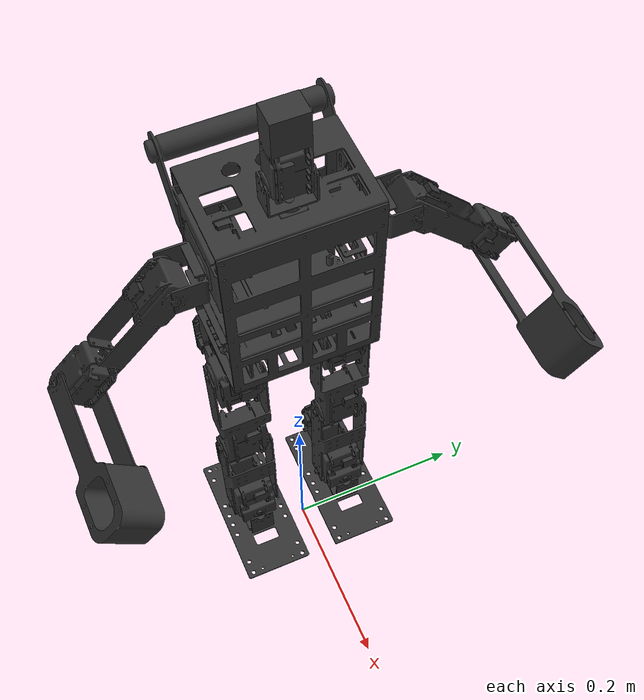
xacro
<?xml version="1.0" ?>
<robot name="Minibot" xmlns:xacro="http://www.ros.org/wiki/xacro">

<xacro:property name="tofa" value="1" /> <!--Torque factor-->
<xacro:property name="infa" value="1" /> <!--inertia factor-->
<xacro:property name="insu" value="0" /> <!--inertia summand-->
<xacro:property name="d" value="0" /> <!-- damping -->
<xacro:property name="f" value="0" /> <!-- friction -->
<xacro:property name="pos_or_eff" value="1" /> <!-- position (0) or effort(1) joint interfaces -->

<link name="base_link"/>

  <joint name="base_link_to_body" type="fixed">
    <parent link="base_link"/>
    <child link="trunk_link"/>
    <origin xyz="0 0 0.545" rpy="0 0 0" />
  </joint>

  <link name="trunk_link">
    <inertial>
      <origin xyz="-0.025019 0.000832 -0.054364" rpy=" 1.5707963268 0 1.5707963268"/>
      <mass value="1.423"/>
      <inertia ixx="${insu*10+infa* 0.009125471}"  ixy="0.0"  ixz="0" iyy="${insu*10+infa*0.005276569}" iyz="0.0" izz="${insu*10+infa*0.010426914}" />
    </inertial>
    <visual>
      <origin xyz="0 0 0" rpy="1.5707963268 0 1.5707963268"/>
      <geometry>
        <mesh filename="package://minibot_description/meshes/torso_low.dae"  scale="1 1 1"/>
      </geometry>
      <material name="Grey">
        <color rgba="0.20 0.20 0.20 1.0"/>
      </material>
    </visual>
    <collision>
      <origin xyz="0 0 0" rpy="1.5707963268 0 1.5707963268"/>
      <geometry>
        <mesh filename="package://minibot_description/meshes/torso_coll.dae"  scale="1 1 1"/>
      </geometry>
    </collision> -->
  </link>

  <link name="L_HEAD_PAN">
    <inertial>
      <origin xyz="0.000002 -0.001022 0.008994"/>
            <mass value="0.001"/>
      <inertia ixx="0"  ixy="0"  ixz="0" iyy="0" iyz="0" izz="0" />
    </inertial>
    <visual>
      <origin xyz="0 0 0" rpy="1.5707963268 0 0" />
      <geometry>
        <mesh filename="package://minibot_description/meshes/head_lower_high.stl"  scale="1 1 1"/>
      </geometry>
      <material name="Grey">
        <color rgba="0.20 0.20 0.20 1.0"/>
      </material>
    </visual>
    <collision>
      <origin xyz="0 0 0" rpy="1.5707963268 0 0" />
      <geometry>
        <mesh filename="package://minibot_description/meshes/head_lower_coll.dae"  scale="1 1 1"/>
      </geometry>
    </collision>
  </link>

  <link name="L_HEAD_TILT">
    <inertial>
      <origin xyz="-0.000223 -0.028433 0.0" rpy="0 1.5707963268 0"/>
      <mass value="0.001"/>
      <inertia ixx="0"  ixy="0"  ixz="0" iyy="0" iyz="0" izz="0" />
    </inertial>
    <visual>
      <origin xyz="0 0 0" rpy="3.14 1.5707963268 0" />
      <geometry>
        <mesh filename="package://minibot_description/meshes/head_upper_high.stl"  scale="1 1 1"/>
      </geometry>
      <material name="Grey">
        <color rgba="0.20 0.20 0.20 1.0"/>
      </material>
    </visual>
    <collision>
      <origin xyz="0 0 0" rpy="3.14 1.5707963268 0" />
      <geometry>
        <mesh filename="package://minibot_description/meshes/head_upper_coll.dae"  scale="1 1 1"/>
      </geometry>
    </collision>
  </link>

  <link name="L_SHOULDER_PITCH_L">
    <inertial>
      <origin xyz="0.0 0.0 0.0087"/>
      <mass value="0.018"/>
      <inertia ixx="${insu*0.1+infa*0.000006948}"  ixy="0"  ixz="0" iyy="${insu*0.1+infa*0.000007574}" iyz="0" izz="${insu*0.1+infa*0.000003585}" />
    </inertial>
    <visual>
      <origin xyz="0 0 0" rpy="0 1.5707963268 1.5707963268"/>
      <geometry>
        <!--box size="0.016 0.033 0.02165" /-->
        <mesh filename="package://minibot_description/meshes/shoulder_con_high.stl"  scale="1 1 1"/>
      </geometry>
      <material name="Grey">
        <color rgba="0.20 0.20 0.20 1.0"/>
      </material>
    </visual>
    <collision>
      <origin xyz="0 0 0" rpy="0 1.5707963268 1.5707963268"/>
      <geometry>
        <mesh filename="package://minibot_description/meshes/shoulder_con_coll.dae"  scale="1 1 1"/>
      </geometry>
    </collision>
  </link>

  <link name="L_SHOULDER_ROLL_L" >
    <inertial>
      <origin xyz="-0.071053 0.000432 0.000046"/>
      <mass value="0.190"/>
      <inertia ixx="${insu+infa*0.0000409}"  ixy="0"  ixz="0" iyy="${insu+infa*0.000667366}" iyz="0" izz="${insu+infa*0.000664711}" />
    </inertial>
    <visual>
      <origin xyz="0 0 0" rpy="0 0 -1.5707963268" />
      <geometry>
        <mesh filename="package://minibot_description/meshes/upper_arm_high.dae"  scale="1 1 1"/>
      </geometry>
      <material name="Grey">
        <color rgba="0.20 0.20 0.20 1.0"/>
      </material>
    </visual>
   <collision>
      <origin xyz="0 0 0" rpy="0 0 -1.5707963268" />
      <geometry>
        <mesh filename="package://minibot_description/meshes/upper_arm_coll.dae"  scale="1 1 1"/>
      </geometry>
    </collision>
  </link>

  <link name="L_ELBOW_L" >
    <inertial>
      <origin xyz="-0.108 0.0 0.0" rpy="0 0 -3.141"/>
      <mass value="0.097"/>
      <inertia ixx="${insu*0.1+infa*0.00004315}"  ixy="0"  ixz="0" iyy="${insu*0.1+infa*0.000170889}" iyz="0" izz="${insu*0.1+infa*0.000179088}" />
    </inertial>

    <visual>
      <origin xyz="0 0 0" rpy="0 1.5707963268 -1.5707963268" />
      <geometry>
        <mesh filename="package://minibot_description/meshes/lower_arm_high.stl"  scale="1 1 1"/>
      </geometry>
      <material name="Grey">
        <color rgba="0.20 0.20 0.20 1.0"/>
      </material>
    </visual>
    <collision>
      <origin xyz="0 0 0" rpy="0 1.5707963268 -1.5707963268" />
      <geometry>
        <mesh filename="package://minibot_description/meshes/lower_arm_coll.dae"  scale="1 1 1"/>
      </geometry>
    </collision>
  </link>

  <link name="L_SHOULDER_PITCH_R" >
    <inertial>
      <origin xyz="0.0 0.0 0.0087"/>
      <mass value="0.018"/>
      <inertia ixx="${insu*0.1+infa*0.000006948}"  ixy="0"  ixz="0" iyy="${insu*0.1+infa*0.000007574}" iyz="0" izz="${insu*0.1+infa*0.000003585}" />
    </inertial>
    <visual>
      <origin xyz="0 0 0" rpy="0 1.5707963268 1.5707963268"/>
      <geometry>
        <!--box size="0.016 0.033 0.02165" /-->
        <mesh filename="package://minibot_description/meshes/shoulder_con_high.stl"  scale="1 1 1"/>
      </geometry>
      <material name="Grey">
        <color rgba="0.20 0.20 0.20 1.0"/>
      </material>
    </visual>
    <collision>
      <origin xyz="0 0 0" rpy="0 1.5707963268 1.5707963268"/>
      <geometry>
        <mesh filename="package://minibot_description/meshes/shoulder_con_coll.dae"  scale="1 1 1"/>
      </geometry>
    </collision>
  </link>

  <link name="L_SHOULDER_ROLL_R" >
    <inertial>
      <origin xyz="-0.071053 0.000432 0.000046"/>
      <mass value="0.190"/>
      <inertia ixx="${insu*0.1+infa*0.0000409}"  ixy="0"  ixz="0" iyy="${insu*0.1+infa*0.000667366}" iyz="0" izz="${insu*0.1+infa*0.000664711}" />
    </inertial>
    <visual>
      <origin xyz="0 0 0" rpy="0 0 -1.5707963268" />
      <geometry>
        <!--box size="0.06 0.032 0.035"/-->
        <mesh filename="package://minibot_description/meshes/upper_arm_high.dae"  scale="1 1 1"/>
      </geometry>
      <material name="Grey">
        <color rgba="0.20 0.20 0.20 1.0"/>
      </material>
    </visual>
    <collision>
      <origin xyz="0 0 0" rpy="0 0 -1.5707963268" />
      <geometry>
        <mesh filename="package://minibot_description/meshes/upper_arm_coll.dae"  scale="1 1 1"/>
      </geometry>
    </collision>
  </link>

  <link name="L_ELBOW_R" >
    <inertial>
      <origin xyz="0.108 0.0 0.0"/>
      <mass value="0.097"/>
      <inertia ixx="${insu*0.1+infa*0.00004315}"  ixy="0"  ixz="0" iyy="${insu*0.1+infa*0.000170889}" iyz="0" izz="${insu*0.1+infa*0.000179088}" />
    </inertial>

    <visual>
      <origin xyz="0 0 0" rpy="0 1.5707963268 1.5707963268" />
      <geometry>
        <mesh filename="package://minibot_description/meshes/lower_arm_high.stl"  scale="1 1 1"/>
      </geometry>
      <material name="Grey">
        <color rgba="0.20 0.20 0.20 1.0"/>
      </material>
    </visual>
    <collision>
      <origin xyz="0 0 0" rpy="0 1.5707963268 1.5707963268" />
      <geometry>
        <mesh filename="package://minibot_description/meshes/lower_arm_coll.dae"  scale="1 1 1"/>
      </geometry>
    </collision>
  </link>

  <link name="L_HIP_YAW_L" >
    <inertial>
      <origin xyz="0.0 0.0 0.011" rpy="1.5707963268 0 1.5707963268"/>
      <mass value="0.022"/>
      <inertia ixx="${insu*0.1+infa*0.000014143}"  ixy="0"  ixz="0" iyy="${insu*0.1+infa*0.000013017}" iyz="0" izz="${insu*0.1+infa*0.0000052}" />
    </inertial>
    <visual>
      <origin xyz="0 0 0" rpy="1.5707963268 0 0" />
      <geometry>
        <!--box size="0.045 0.08175 0.028652" /-->
        <mesh filename="package://minibot_description/meshes/yaw_con_high.stl"  scale="1 1 1"/>
      </geometry>
      <material name="Grey">
        <color rgba="0.20 0.20 0.20 1.0"/>
      </material>
    </visual>
    <collision>
      <origin xyz="0 0 0" rpy="1.5707963268 0 0" />
      <geometry>
        <mesh filename="package://minibot_description/meshes/yaw_con_coll.dae"  scale="1 1 1"/>
      </geometry>
    </collision>
  </link>

  <link name="L_HIP_ROLL_L" >
    <inertial>
      <origin xyz="-0.00057 -0.013721 0.02013 "/>
      <mass value="0.325"/>
      <inertia ixx="${insu+infa*0.000315619}"  ixy="0"  ixz="0" iyy="${insu+infa*0.000280296}" iyz="0" izz="${insu+infa*0.0001431}" />
    </inertial>
    <visual>
      <origin xyz="0 0 -0.025" rpy="0 3.14 0" />
      <geometry>
        <!--box size="0.001 0.001 0.001"/-->
        <mesh filename="package://minibot_description/meshes/hip_roll_low.dae"  scale="1 1 1"/>
      </geometry>
      <material name="Grey">
        <color rgba="0.20 0.20 0.20 1.0"/>
      </material>
    </visual>
    <collision>
      <origin xyz="0 0 -0.025" rpy="0 3.14 0" />
      <geometry>
        <mesh filename="package://minibot_description/meshes/hip_roll_coll.dae"  scale="1 1 1"/>
      </geometry>
    </collision>
  </link>

  <link name="L_HIP_PITCH_L" >
    <inertial>
      <origin xyz="-0.12799 -0.000699 0.000454" rpy="0 1.5707963268 1.5707963268"/>
      <mass value="0.215"/>
      <inertia ixx="${insu+infa*0.000295153}"  ixy="0"  ixz="0" iyy="${insu+infa*0.000085463}" iyz="0" izz="${insu+infa*0.000344449}" />
    </inertial>
    <visual>
      <origin xyz="0 0 0" rpy="1.5707963268 1.5707963268 0" />
      <geometry>
        <!--box size="0.093 0.035 0.045"-->
        <mesh filename="package://minibot_description/meshes/upper_leg_high.stl"  scale="1 1 1"/>
      </geometry>
      <material name="Grey">
        <color rgba="0.20 0.20 0.20 1.0"/>
      </material>
    </visual>
    <collision>
      <origin xyz="0 0 0" rpy="1.5707963268 1.5707963268 0" />
      <geometry>
        <mesh filename="package://minibot_description/meshes/upper_leg_coll.dae"  scale="1 1 1"/>
      </geometry>
    </collision>
  </link>

  <link name="L_KNEE_L" >
    <inertial>
      <origin xyz="-0.072079 -0.00295 0.0" rpy="0 1.5707963268 1.5707963268"/>
      <mass value="0.055"/>
      <inertia ixx="${insu*0.1+infa*0.000094062}"  ixy="0"  ixz="0" iyy="${insu*0.1+infa*0.000043139}" iyz="0" izz="${insu*0.1+infa*0.000125827}" />
    </inertial>
    <visual>
      <origin xyz="0 0 0" rpy="1.5707963268 1.5707963268 0" />
      <geometry>
        <!--box size="0.093 0.035 0.045"/-->
        <mesh filename="package://minibot_description/meshes/lower_leg_high.stl"  scale="1 1 1"/>
      </geometry>
      <material name="Grey">
        <color rgba="0.20 0.20 0.20 1.0"/>
      </material>
    </visual>
    <collision>
      <origin xyz="0 0 0" rpy="1.5707963268 1.5707963268 0" />
      <geometry>
        <mesh filename="package://minibot_description/meshes/lower_leg_coll.dae"  scale="1 1 1"/>
      </geometry>
    </collision>
  </link>

  <link name="L_ANKLE_PITCH_L" >
    <inertial>
      <origin xyz="0.014045 -0.020134 -0.000053" rpy="1.5707963268 1.5707963268 0"/>
      <mass value="0.325"/>
      <inertia ixx="${insu+infa*0.000315619}"  ixy="0"  ixz="0" iyy="${insu+infa*0.000280296}" iyz="0" izz="${insu+infa*0.0001431}" />
    </inertial>
    <visual>
      <origin xyz="0 0 0" rpy="3.14 -1.5707963268 1.5707963268" />
      <geometry>
        <!--box size="0.028652 0.08175 0.045"/-->
        <mesh filename="package://minibot_description/meshes/ankle_roll_low.dae"  scale="1 1 1"/>
      </geometry>
      <material name="Grey">
        <color rgba="0.20 0.20 0.20 1.0"/>
      </material>
    </visual>
    <collision>
      <origin xyz="0 0 0" rpy="3.14 -1.5707963268 1.5707963268" />
      <geometry>
        <mesh filename="package://minibot_description/meshes/ankle_roll_coll.dae"  scale="1 1 1"/>
      </geometry>
    </collision>
  </link>

  <link name="L_ANKLE_ROLL_L" >
    <inertial>
      <origin xyz="-0.0364 0.0003 0.002423" rpy="0 0 1.5707963268"/>
      <mass value="0.086"/>
      <inertia ixx="${insu*0.1+infa*0.000165687}"  ixy="0"  ixz="0" iyy="${insu*0.1+infa*0.000197792}" iyz="0" izz="${insu*0.1+infa*0.00004318}" />
    </inertial>
    <visual>
      <origin xyz="0 0 -0.025" rpy="0 0 -1.5707963268" />
      <geometry>
        <!--box size="0.008 0.066 0.104"/-->
        <mesh filename="package://minibot_description/meshes/foot_high.stl"  scale="1 1 1"/>
      </geometry>
      <material name="Grey">
        <color rgba="0.20 0.20 0.20 1.0"/>
      </material>
    </visual>
    <collision>
      <origin xyz="0 0 -0.025" rpy="0 0 -1.5707963268" />
      <geometry>
        <mesh filename="package://minibot_description/meshes/foot_coll.dae"  scale="1 1 1"/>
      </geometry>
    </collision>
  </link>

  <link name="L_HIP_YAW_R" >
    <inertial>
      <origin xyz="0.0 0.0 0.011" rpy="1.5707963268 0 1.5707963268"/>
      <mass value="0.022"/>
      <inertia ixx="${insu*0.1+infa*0.000014143}"  ixy="0"  ixz="0" iyy="${insu*0.1+infa*0.000013017}" iyz="0" izz="${insu*0.1+infa*0.0000052}" />
    </inertial>
    <visual>
      <origin xyz="0 0 0" rpy="1.5707963268 0 0" />
      <geometry>
        <!--box size="0.045 0.08175 0.028652" /-->
        <mesh filename="package://minibot_description/meshes/yaw_con_high.stl"  scale="1 1 1"/>
      </geometry>
      <material name="Grey">
        <color rgba="0.20 0.20 0.20 1.0"/>
      </material>
    </visual>
    <collision>
      <origin xyz="0 0 0" rpy="1.5707963268 0 0" />
      <geometry>
        <mesh filename="package://minibot_description/meshes/yaw_con_coll.dae"  scale="1 1 1"/>
      </geometry>
    </collision>
  </link>

  <link name="L_HIP_ROLL_R" >
    <inertial>
      <origin xyz="-0.00057 -0.013721 0.02013 "/>
      <mass value="0.325"/>
      <inertia ixx="${insu+infa*0.000315619}"  ixy="0"  ixz="0" iyy="${insu+infa*0.000280296}" iyz="0" izz="${insu+infa*0.0001431}" />
    </inertial>
    <visual>
      <origin xyz="0 0 -0.025" rpy="0 3.14 0" />
      <geometry>
        <!--box size="0.001 0.001 0.001"/-->
        <mesh filename="package://minibot_description/meshes/hip_roll_low.dae"  scale="1 1 1"/>
      </geometry>
      <material name="Grey">
        <color rgba="0.20 0.20 0.20 1.0"/>
      </material>
    </visual>
    <collision>
      <origin xyz="0 0 -0.025" rpy="0 3.14 0" />
      <geometry>
        <mesh filename="package://minibot_description/meshes/hip_roll_coll.dae"  scale="1 1 1"/>
      </geometry>
    </collision>

  </link>

  <link name="L_HIP_PITCH_R" >
    <inertial>
      <origin xyz="0.12799 -0.000699 0.000454" rpy="0 1.5707963268 1.5707963268"/>
      <mass value="0.215"/>
      <inertia ixx="${insu+infa*0.000295153}"  ixy="0"  ixz="0" iyy="${insu+infa*0.000085463}" iyz="0" izz="${insu+infa*0.000344449}" />
    </inertial>
    <visual>
      <origin xyz="0 0 0" rpy="1.5707963268 -1.5707963268 0" />
      <geometry>
        <!--box size="0.093 0.035 0.045"/-->
        <mesh filename="package://minibot_description/meshes/upper_leg_high.stl"  scale="1 1 1"/>
      </geometry>
      <material name="Grey">
        <color rgba="0.20 0.20 0.20 1.0"/>
      </material>
    </visual>
    <collision>
      <origin xyz="0 0 0" rpy="1.5707963268 -1.5707963268 0" />
      <geometry>
        <mesh filename="package://minibot_description/meshes/upper_leg_coll.dae"  scale="1 1 1"/>
      </geometry>
    </collision>

  </link>

  <link name="L_KNEE_R" >
    <inertial>
      <origin xyz="0.072079 -0.00295 0.0" rpy="0 1.5707963268 1.5707963268"/>
      <mass value="0.055"/>
      <inertia ixx="${insu*0.1+infa*0.000094062}"  ixy="0"  ixz="0" iyy="${insu*0.1+infa*0.000043139}" iyz="0" izz="${insu*0.1+infa*0.000125827}" />
    </inertial>
    <visual>
      <origin xyz="0 0 0" rpy="1.5707963268 -1.5707963268 0" />
      <geometry>
        <!--box size="0.093 0.035 0.045"/-->
        <mesh filename="package://minibot_description/meshes/lower_leg_high.stl"  scale="1 1 1"/>
      </geometry>
      <material name="Grey">
        <color rgba="0.20 0.20 0.20 1.0"/>
      </material>
    </visual>
    <collision>
      <origin xyz="0 0 0" rpy="1.5707963268 -1.5707963268 0" />
      <geometry>
        <mesh filename="package://minibot_description/meshes/lower_leg_coll.dae"  scale="1 1 1"/>
      </geometry>
    </collision>

  </link>

  <link name="L_ANKLE_PITCH_R" >
    <inertial>
      <origin xyz="-0.014045 -0.020134 -0.000053" rpy="1.5707963268 1.5707963268 0"/>
      <mass value="0.325"/>
      <inertia ixx="${insu+infa*0.000315619}"  ixy="0"  ixz="0" iyy="${insu+infa*0.000280296}" iyz="0" izz="${insu+infa*0.0001431}" />
    </inertial>
    <visual>
      <origin xyz="0 0 0" rpy="0 1.5707963268 1.5707963268" />
      <geometry>
        <!--box size="0.028652 0.08175 0.045"/-->
        <mesh filename="package://minibot_description/meshes/ankle_roll_low.dae"  scale="1 1 1"/>
      </geometry>
      <material name="Grey">
        <color rgba="0.20 0.20 0.20 1.0"/>
      </material>
    </visual>
    <collision>
      <origin xyz="0 0 0" rpy="0 1.5707963268 1.5707963268" />
      <geometry>
        <mesh filename="package://minibot_description/meshes/ankle_roll_coll.dae"  scale="1 1 1"/>
      </geometry>
    </collision>

  </link>

  <link name="L_ANKLE_ROLL_R" >
    <inertial>
      <origin xyz="0.0364 0.0003 0.002423" rpy="0 0 1.5707963268"/>
      <mass value="0.086"/>
      <inertia ixx="${insu*0.1+infa*0.000165687}"  ixy="0"  ixz="0" iyy="${insu*0.1+infa*0.000197792}" iyz="0" izz="${insu*0.1+infa*0.00004318}" />
    </inertial>
    <visual>
      <origin xyz="0 0 -0.025" rpy="0 0 1.5707963268" />
      <geometry>
        <!--box size="0.008 0.066 0.104"/-->
        <mesh filename="package://minibot_description/meshes/foot_high.stl"  scale="1 1 1"/>
      </geometry>
      <material name="Grey">
        <color rgba="0.20 0.20 0.20 1.0"/>
      </material>
    </visual>
    <collision>
      <origin xyz="0 0 -0.025" rpy="0 0 1.5707963268" />
      <geometry>
        <mesh filename="package://minibot_description/meshes/foot_coll.dae"  scale="1 1 1"/>
      </geometry>
    </collision>
  </link>

  <link name="L_CAMERA" />
  <link name="L_Hand_L" />
  <link name="L_Hand_R" />
  <link name="left_foot_sole_link" />
  <link name="right_foot_sole_link" />
  <link name="L_FOOT_FRONT_L" />
  <link name="L_FOOT_FRONT_R" />

  <link name="L_IMU">
  </link>

  <joint name="j_imu" type="fixed">
  <parent link="trunk_link"/>
  <child link="L_IMU"/>
  <origin xyz="-0.03 0 -0.05" rpy="0 0 0" />
  <axis xyz="0 0 1" />
  </joint>

  <joint name="j_camboard" type="fixed">
  <parent link="L_HEAD_TILT"/>
  <child link="L_CAMERA"/>
  <origin xyz="0 -0.055 0 " rpy="-1.5707963 0 3.14159" />
  <axis xyz="0 0 1" />
  </joint>

  <joint name="head_pitch" type="revolute">
    <parent link="L_HEAD_PAN"/>
    <child link="L_HEAD_TILT"/>
    <origin xyz="0 0 0.02715" rpy="-1.5707963 0 1.5707963" />
    <axis xyz="0 0 1" />
    <limit effort="${tofa*2.5}" velocity="5.6548668" lower="-1.5707963267910001" upper="0" />
  <dynamics damping="${d}" friction="0.0"/> </joint>

  <joint name="head_yaw" type="revolute">
    <parent link="trunk_link"/>
    <child link="L_HEAD_PAN"/>
    <origin xyz="0 0 0.050593" rpy="0 0 1.5707963" />
    <axis xyz="0 0 1" />
    <limit effort="${tofa*2.5}" velocity="5.6548668" lower="-2.1816615649875" upper="2.1816615649875" />
  <dynamics damping="${d}" friction="0.0"/> </joint>

  <joint name="left_shoulder_pitch" type="revolute">
    <parent link="trunk_link"/>
    <child link="L_SHOULDER_PITCH_L"/>
    <origin xyz="0 0.08134 0" rpy="0 -1.5707963 -1.5707963" />
    <axis xyz="0 0 1" />
    <limit effort="${tofa*6.0}" velocity="6.597344565" lower="-3.1415926535820002" upper="3.1415926535820002" />
  <dynamics damping="${d}" friction="0.0"/> </joint>

  <joint name="left_shoulder_roll" type="revolute">
    <parent link="L_SHOULDER_PITCH_L"/>
    <child link="L_SHOULDER_ROLL_L"/>
    <origin xyz="0 0 0.029194" rpy="-1.5707963 0.7853981633955001 0" />
    <axis xyz="0 0 -1" />
    <limit effort="${tofa*2.5}" velocity="5.648668" lower="-2.3561944901865" upper="0.7853981633955001" />
  <dynamics damping="${d}" friction="0.0"/> </joint>

  <joint name="left_elbow" type="revolute">
    <parent link="L_SHOULDER_ROLL_L"/>
    <child link="L_ELBOW_L"/>
    <origin xyz="-0.14 0 0" rpy="1.5707963 1.5707963 0" />
    <axis xyz="0 0 1" />
    <limit effort="${tofa*2.5}" velocity="5.6548668" lower="-1.1344640137935" upper="1.5707963267910001" />
  <dynamics damping="${d}" friction="0.0"/> </joint>

  <joint name="j_LHand" type="fixed">
   <parent link="L_ELBOW_L"/>
   <child link="L_Hand_L" />
   <origin xyz="-0.1573 0 0" rpy="0 0 3.14159"/>
  </joint>

  <joint name="right_shoulder_pitch" type="revolute">
    <parent link="trunk_link"/>
    <child link="L_SHOULDER_PITCH_R"/>
    <origin xyz="0 -0.08134 0" rpy="0 1.5707963 -1.5707963" />
    <axis xyz="0 0 1" />
    <limit effort="${tofa*6.0}" velocity="6.597344565" lower="-3.1415926535820002" upper="3.1415926535820002" />
  <dynamics damping="${d}" friction="0.0"/> </joint>

  <joint name="right_shoulder_roll" type="revolute">
    <parent link="L_SHOULDER_PITCH_R"/>
    <child link="L_SHOULDER_ROLL_R"/>
    <origin xyz="0 0 0.029194" rpy="-1.5707963 2.356194463 0" />
    <axis xyz="0 0 -1" />
    <limit effort="${tofa*2.5}" velocity="5.648668" lower="-0.7853981633955001" upper="2.3561944901865" />
  <dynamics damping="${d}" friction="0.0"/> </joint>

  <joint name="right_elbow" type="revolute">
    <parent link="L_SHOULDER_ROLL_R"/>
    <child link="L_ELBOW_R"/>
    <origin xyz="-0.14 0 0" rpy="-1.5707963 -1.5707963 0" />
    <axis xyz="0 0 1" />
    <limit effort="${tofa*2.5}" velocity="5.6548668" lower="-1.635" upper="1.5707963267910001" />
  <dynamics damping="${d}" friction="0.0"/> </joint>

  <joint name="j_RHand" type="fixed">
   <parent link="L_ELBOW_R"/>
   <child link="L_Hand_R" />
   <origin xyz="0.1573 0 0"/>
  </joint>

  <joint name="left_hip_yaw" type="revolute">
    <parent link="trunk_link"/>
    <child link="L_HIP_YAW_L"/>
    <origin xyz="-0.022 0.057775 -0.160593" rpy="0 3.14159 3.14159" />
    <axis xyz="0 0 1" />
    <limit effort="${tofa*2.5}" velocity="5.6548668" lower="-0.9250245035547" upper="0.9250245035547" />
  <dynamics damping="${d}" friction="0.0"/> </joint>

  <joint name="left_hip_roll" type="revolute">
    <parent link="L_HIP_YAW_L"/>
    <child link="L_HIP_ROLL_L"/>
    <origin xyz="-0.025 0 0.038444" rpy="-1.5707963 0 1.5707963" />
    <axis xyz="0 0 -1" />
    <limit effort="${tofa*6.0}" velocity="6.597344565" lower="-1.0122909661542001" upper="0.7853981633955001" />
  <dynamics damping="${d}" friction="0.0"/> </joint>

  <joint name="left_hip_pitch" type="revolute">
    <parent link="L_HIP_ROLL_L"/>
    <child link="L_HIP_PITCH_L"/>
    <origin xyz="0 0 -0.025" rpy="1.5707963 0 1.5707963" />
    <axis xyz="0 0 -1" />
    <limit effort="${tofa*8.4}" velocity="4.712388975" lower="-0.48869219055720003" upper="1.919862177189" />
  <dynamics damping="${d}" friction="0.0"/> </joint>

  <joint name="left_knee" type="revolute">
    <parent link="L_HIP_PITCH_L"/>
    <child link="L_KNEE_L"/>
    <origin xyz="-0.150 0 0" rpy="0 0 0" />
    <axis xyz="0 0 -1" />
    <limit effort="${tofa*8.4}" velocity="4.712388975" lower="-3.14" upper="3.14" />
  <dynamics damping="${d}" friction="0.0"/> </joint>

  <joint name="left_ankle_pitch" type="revolute">
    <parent link="L_KNEE_L"/>
    <child link="L_ANKLE_PITCH_L"/>
    <origin xyz="-0.150 0 0" rpy="3.14159 0 0" />
    <axis xyz="0 0 1" />
    <limit effort="${tofa*8.4}" velocity="4.712388975" lower="-1.6406094968706" upper="1.2391837689129" />
  <dynamics damping="${d}" friction="0.0"/> </joint>

  <joint name="left_ankle_roll" type="revolute">
    <parent link="L_ANKLE_PITCH_L"/>
    <child link="L_ANKLE_ROLL_L"/>
    <origin xyz="0 0.0275 0" rpy="-1.5707963 0 0" />
    <axis xyz="0 0 1" />
    <limit effort="${tofa*6.0}" velocity="6.597344565" lower="-1.4660765716716" upper="1.4660765716716" />
  <dynamics damping="${d}" friction="0.0"/> </joint>

  <joint name="j_LFootBottom" type="fixed">
   <parent link="L_ANKLE_ROLL_L"/>
   <child link="left_foot_sole_link" />
   <origin xyz="-0.040444 0 0" rpy="3.14159 -1.5707963 0"/>
  </joint>

  <joint name="j_LFootFront" type="fixed">
   <parent link="left_foot_sole_link"/>
   <child link="L_FOOT_FRONT_L" />
   <origin xyz="0.0849 0 0 "/>
  </joint>

  <joint name="right_hip_yaw" type="revolute">
    <parent link="trunk_link"/>
    <child link="L_HIP_YAW_R"/>
    <origin xyz="-0.022 -0.057775 -0.160593" rpy="0 3.14159 3.14159" />
    <axis xyz="0 0 1" />
    <limit effort="${tofa*2.5}" velocity="5.6548668" lower="-0.9250245035547" upper="0.9250245035547" />
  <dynamics damping="${d}" friction="0.0"/> </joint>

  <joint name="right_hip_roll" type="revolute">
    <parent link="L_HIP_YAW_R"/>
    <child link="L_HIP_ROLL_R"/>
    <origin xyz="-0.025 0 0.038444" rpy="-1.5707963 0 1.5707963" />
    <axis xyz="0 0 -1" />
    <limit effort="${tofa*6.0}" velocity="6.597344565" lower="-1.0122909661542001" upper="0.7853981633955001" />
  <dynamics damping="${d}" friction="0.0"/> </joint>

  <joint name="right_hip_pitch" type="revolute">
    <parent link="L_HIP_ROLL_R"/>
    <child link="L_HIP_PITCH_R"/>
    <origin xyz="0 0 -0.025" rpy="1.5707963 0 -1.5707963" />
    <axis xyz="0 0 1" />
    <limit effort="${tofa*8.4}" velocity="4.712388975" lower="-1.919862177189" upper="0.48869219055720003" />
  <dynamics damping="${d}" friction="0.0"/> </joint>

  <joint name="right_knee" type="revolute">
    <parent link="L_HIP_PITCH_R"/>
    <child link="L_KNEE_R"/>
    <origin xyz="0.150 0 0" rpy="0 0 0" />
    <axis xyz="0 0 1" />
    <limit effort="${tofa*8.4}" velocity="4.712388975" lower="-3.14" upper="3.14" />
  <dynamics damping="${d}" friction="0.0"/> </joint>

  <joint name="right_ankle_pitch" type="revolute">
    <parent link="L_KNEE_R"/>
    <child link="L_ANKLE_PITCH_R"/>
    <origin xyz="0.150 0 0" rpy="3.14159 0 0" />
    <axis xyz="0 0 -1" />
    <limit effort="${tofa*8.4}" velocity="4.712388975" lower="-1.2391837689129" upper="1.6406094968706" />
  <dynamics damping="${d}" friction="0.0"/> </joint>

  <joint name="right_ankle_roll" type="revolute">
    <parent link="L_ANKLE_PITCH_R"/>
    <child link="L_ANKLE_ROLL_R"/>
    <origin xyz="0 0.0275 0" rpy="-1.5707963 0 0" />
    <axis xyz="0 0 1" />
    <limit effort="${tofa*6.0}" velocity="6.597344565" lower="-1.4660765716716" upper="1.4660765716716" />
  <dynamics damping="${d}" friction="0.0"/> </joint>

  <joint name="j_RFootBottom" type="fixed">
   <parent link="L_ANKLE_ROLL_R"/>
   <child link="right_foot_sole_link" />
   <origin xyz="0.040444 0 0" rpy="0 -1.5707963 0"/>
  </joint>

  <joint name="j_RFootFront" type="fixed">
   <parent link="right_foot_sole_link"/>
   <child link="L_FOOT_FRONT_R" />
   <origin xyz="0.0849 0 0 "/>
  </joint>

   <transmission name="head_yawTransmission">
    <type>transmission_interface/SimpleTransmission</type>
    <joint name="head_yaw">
    <xacro:if value="${pos_or_eff == 0}">
        <hardwareInterface>hardware_interface/PositionJointInterface</hardwareInterface>
    </xacro:if>
    <xacro:if value="${pos_or_eff == 1}">
        <hardwareInterface>hardware_interface/EffortJointInterface</hardwareInterface>
    </xacro:if>
    </joint>
    <actuator name="head_yawMotor">
        <xacro:if value="${pos_or_eff == 0}">
            <hardwareInterface>hardware_interface/PositionJointInterface</hardwareInterface>
        </xacro:if>
        <xacro:if value="${pos_or_eff == 1}">
            <hardwareInterface>hardware_interface/EffortJointInterface</hardwareInterface>
        </xacro:if>
        <mechanicalReduction>1</mechanicalReduction>
    </actuator>
  </transmission>

   <transmission name="head_pitchTransmission">
    <type>transmission_interface/SimpleTransmission</type>
    <joint name="head_pitch">
        <xacro:if value="${pos_or_eff == 0}">
            <hardwareInterface>hardware_interface/PositionJointInterface</hardwareInterface>
        </xacro:if>
        <xacro:if value="${pos_or_eff == 1}">
            <hardwareInterface>hardware_interface/EffortJointInterface</hardwareInterface>
        </xacro:if>
    </joint>
    <actuator name="head_pitchMotor">
        <xacro:if value="${pos_or_eff == 0}">
            <hardwareInterface>hardware_interface/PositionJointInterface</hardwareInterface>
        </xacro:if>
        <xacro:if value="${pos_or_eff == 1}">
            <hardwareInterface>hardware_interface/EffortJointInterface</hardwareInterface>
        </xacro:if>
      <mechanicalReduction>1</mechanicalReduction>
    </actuator>
  </transmission>

   <transmission name="left_shoulder_pitchTransmission">
    <type>transmission_interface/SimpleTransmission</type>
    <joint name="left_shoulder_pitch">
        <xacro:if value="${pos_or_eff == 0}">
            <hardwareInterface>hardware_interface/PositionJointInterface</hardwareInterface>
        </xacro:if>
        <xacro:if value="${pos_or_eff == 1}">
            <hardwareInterface>hardware_interface/EffortJointInterface</hardwareInterface>
        </xacro:if>
    </joint>
    <actuator name="left_shoulder_pitchMotor">
        <xacro:if value="${pos_or_eff == 0}">
            <hardwareInterface>hardware_interface/PositionJointInterface</hardwareInterface>
        </xacro:if>
        <xacro:if value="${pos_or_eff == 1}">
            <hardwareInterface>hardware_interface/EffortJointInterface</hardwareInterface>
        </xacro:if>
      <mechanicalReduction>1</mechanicalReduction>
    </actuator>
  </transmission>

   <transmission name="left_shoulder_rollTransmission">
    <type>transmission_interface/SimpleTransmission</type>
    <joint name="left_shoulder_roll">
        <xacro:if value="${pos_or_eff == 0}">
            <hardwareInterface>hardware_interface/PositionJointInterface</hardwareInterface>
        </xacro:if>
        <xacro:if value="${pos_or_eff == 1}">
            <hardwareInterface>hardware_interface/EffortJointInterface</hardwareInterface>
        </xacro:if>
    </joint>
    <actuator name="left_shoulder_rollTransmission">
        <xacro:if value="${pos_or_eff == 0}">
            <hardwareInterface>hardware_interface/PositionJointInterface</hardwareInterface>
        </xacro:if>
        <xacro:if value="${pos_or_eff == 1}">
            <hardwareInterface>hardware_interface/EffortJointInterface</hardwareInterface>
        </xacro:if>
      <mechanicalReduction>1</mechanicalReduction>
    </actuator>
  </transmission>

   <transmission name="left_elbowTransmission">
    <type>transmission_interface/SimpleTransmission</type>
    <joint name="left_elbow">
        <xacro:if value="${pos_or_eff == 0}">
            <hardwareInterface>hardware_interface/PositionJointInterface</hardwareInterface>
        </xacro:if>
        <xacro:if value="${pos_or_eff == 1}">
            <hardwareInterface>hardware_interface/EffortJointInterface</hardwareInterface>
        </xacro:if>
    </joint>
    <actuator name="left_elbowMotor">
        <xacro:if value="${pos_or_eff == 0}">
            <hardwareInterface>hardware_interface/PositionJointInterface</hardwareInterface>
        </xacro:if>
        <xacro:if value="${pos_or_eff == 1}">
            <hardwareInterface>hardware_interface/EffortJointInterface</hardwareInterface>
        </xacro:if>
      <mechanicalReduction>1</mechanicalReduction>
    </actuator>
  </transmission>

   <transmission name="right_shoulder_pitchTransmission">
    <type>transmission_interface/SimpleTransmission</type>
    <joint name="right_shoulder_pitch">
        <xacro:if value="${pos_or_eff == 0}">
            <hardwareInterface>hardware_interface/PositionJointInterface</hardwareInterface>
        </xacro:if>
        <xacro:if value="${pos_or_eff == 1}">
            <hardwareInterface>hardware_interface/EffortJointInterface</hardwareInterface>
        </xacro:if>
    </joint>
    <actuator name="right_shoulder_pitchMotor">
        <xacro:if value="${pos_or_eff == 0}">
            <hardwareInterface>hardware_interface/PositionJointInterface</hardwareInterface>
        </xacro:if>
        <xacro:if value="${pos_or_eff == 1}">
            <hardwareInterface>hardware_interface/EffortJointInterface</hardwareInterface>
        </xacro:if>
      <mechanicalReduction>1</mechanicalReduction>
    </actuator>
  </transmission>

   <transmission name="right_shoulder_rollTransmission">
    <type>transmission_interface/SimpleTransmission</type>
    <joint name="right_shoulder_roll">
        <xacro:if value="${pos_or_eff == 0}">
            <hardwareInterface>hardware_interface/PositionJointInterface</hardwareInterface>
        </xacro:if>
        <xacro:if value="${pos_or_eff == 1}">
            <hardwareInterface>hardware_interface/EffortJointInterface</hardwareInterface>
        </xacro:if>
    </joint>
    <actuator name="right_shoulder_rollMotor">
        <xacro:if value="${pos_or_eff == 0}">
            <hardwareInterface>hardware_interface/PositionJointInterface</hardwareInterface>
        </xacro:if>
        <xacro:if value="${pos_or_eff == 1}">
            <hardwareInterface>hardware_interface/EffortJointInterface</hardwareInterface>
        </xacro:if>
      <mechanicalReduction>1</mechanicalReduction>
    </actuator>
  </transmission>

   <transmission name="right_elbowTransmission">
    <type>transmission_interface/SimpleTransmission</type>
    <joint name="right_elbow">
        <xacro:if value="${pos_or_eff == 0}">
            <hardwareInterface>hardware_interface/PositionJointInterface</hardwareInterface>
        </xacro:if>
        <xacro:if value="${pos_or_eff == 1}">
            <hardwareInterface>hardware_interface/EffortJointInterface</hardwareInterface>
        </xacro:if>
    </joint>
    <actuator name="right_elbowMotor">
        <xacro:if value="${pos_or_eff == 0}">
            <hardwareInterface>hardware_interface/PositionJointInterface</hardwareInterface>
        </xacro:if>
        <xacro:if value="${pos_or_eff == 1}">
            <hardwareInterface>hardware_interface/EffortJointInterface</hardwareInterface>
        </xacro:if>
      <mechanicalReduction>1</mechanicalReduction>
    </actuator>
  </transmission>

   <transmission name="left_hip_yawTransmission">
    <type>transmission_interface/SimpleTransmission</type>
    <joint name="left_hip_yaw">
        <xacro:if value="${pos_or_eff == 0}">
            <hardwareInterface>hardware_interface/PositionJointInterface</hardwareInterface>
        </xacro:if>
        <xacro:if value="${pos_or_eff == 1}">
            <hardwareInterface>hardware_interface/EffortJointInterface</hardwareInterface>
        </xacro:if>
    </joint>
    <actuator name="left_hip_yawMotor">
        <xacro:if value="${pos_or_eff == 0}">
            <hardwareInterface>hardware_interface/PositionJointInterface</hardwareInterface>
        </xacro:if>
        <xacro:if value="${pos_or_eff == 1}">
            <hardwareInterface>hardware_interface/EffortJointInterface</hardwareInterface>
        </xacro:if>
      <mechanicalReduction>1</mechanicalReduction>
    </actuator>
  </transmission>

   <transmission name="left_hip_rollTransmission">
    <type>transmission_interface/SimpleTransmission</type>
    <joint name="left_hip_roll">
        <xacro:if value="${pos_or_eff == 0}">
            <hardwareInterface>hardware_interface/PositionJointInterface</hardwareInterface>
        </xacro:if>
        <xacro:if value="${pos_or_eff == 1}">
            <hardwareInterface>hardware_interface/EffortJointInterface</hardwareInterface>
        </xacro:if>
    </joint>
    <actuator name="left_hip_rollMotor">
        <xacro:if value="${pos_or_eff == 0}">
            <hardwareInterface>hardware_interface/PositionJointInterface</hardwareInterface>
        </xacro:if>
        <xacro:if value="${pos_or_eff == 1}">
            <hardwareInterface>hardware_interface/EffortJointInterface</hardwareInterface>
        </xacro:if>
      <mechanicalReduction>1</mechanicalReduction>
    </actuator>
  </transmission>

   <transmission name="left_hip_pitchTransmission">
    <type>transmission_interface/SimpleTransmission</type>
    <joint name="left_hip_pitch">
        <xacro:if value="${pos_or_eff == 0}">
            <hardwareInterface>hardware_interface/PositionJointInterface</hardwareInterface>
        </xacro:if>
        <xacro:if value="${pos_or_eff == 1}">
            <hardwareInterface>hardware_interface/EffortJointInterface</hardwareInterface>
        </xacro:if>
    </joint>
    <actuator name="left_hip_pitchMotor">
        <xacro:if value="${pos_or_eff == 0}">
            <hardwareInterface>hardware_interface/PositionJointInterface</hardwareInterface>
        </xacro:if>
        <xacro:if value="${pos_or_eff == 1}">
            <hardwareInterface>hardware_interface/EffortJointInterface</hardwareInterface>
        </xacro:if>
      <mechanicalReduction>1</mechanicalReduction>
    </actuator>
  </transmission>

   <transmission name="left_kneeTransmission">
    <type>transmission_interface/SimpleTransmission</type>
    <joint name="left_knee">
        <xacro:if value="${pos_or_eff == 0}">
            <hardwareInterface>hardware_interface/PositionJointInterface</hardwareInterface>
        </xacro:if>
        <xacro:if value="${pos_or_eff == 1}">
            <hardwareInterface>hardware_interface/EffortJointInterface</hardwareInterface>
        </xacro:if>
    </joint>
    <actuator name="left_kneeMotor">
        <xacro:if value="${pos_or_eff == 0}">
            <hardwareInterface>hardware_interface/PositionJointInterface</hardwareInterface>
        </xacro:if>
        <xacro:if value="${pos_or_eff == 1}">
            <hardwareInterface>hardware_interface/EffortJointInterface</hardwareInterface>
        </xacro:if>
      <mechanicalReduction>1</mechanicalReduction>
    </actuator>
  </transmission>

   <transmission name="left_ankle_pitchTransmission">
    <type>transmission_interface/SimpleTransmission</type>
    <joint name="left_ankle_pitch">
        <xacro:if value="${pos_or_eff == 0}">
            <hardwareInterface>hardware_interface/PositionJointInterface</hardwareInterface>
        </xacro:if>
        <xacro:if value="${pos_or_eff == 1}">
            <hardwareInterface>hardware_interface/EffortJointInterface</hardwareInterface>
        </xacro:if>
    </joint>
    <actuator name="left_ankle_pitchMotor">
        <xacro:if value="${pos_or_eff == 0}">
            <hardwareInterface>hardware_interface/PositionJointInterface</hardwareInterface>
        </xacro:if>
        <xacro:if value="${pos_or_eff == 1}">
            <hardwareInterface>hardware_interface/EffortJointInterface</hardwareInterface>
        </xacro:if>
      <mechanicalReduction>1</mechanicalReduction>
    </actuator>
  </transmission>

   <transmission name="left_ankle_rollTransmission">
    <type>transmission_interface/SimpleTransmission</type>
    <joint name="left_ankle_roll">
        <xacro:if value="${pos_or_eff == 0}">
            <hardwareInterface>hardware_interface/PositionJointInterface</hardwareInterface>
        </xacro:if>
        <xacro:if value="${pos_or_eff == 1}">
            <hardwareInterface>hardware_interface/EffortJointInterface</hardwareInterface>
        </xacro:if>
    </joint>
    <actuator name="left_ankle_rollMotor">
        <xacro:if value="${pos_or_eff == 0}">
            <hardwareInterface>hardware_interface/PositionJointInterface</hardwareInterface>
        </xacro:if>
        <xacro:if value="${pos_or_eff == 1}">
            <hardwareInterface>hardware_interface/EffortJointInterface</hardwareInterface>
        </xacro:if>
      <mechanicalReduction>1</mechanicalReduction>
    </actuator>
  </transmission>

   <transmission name="right_hip_yawTransmission">
    <type>transmission_interface/SimpleTransmission</type>
    <joint name="right_hip_yaw">
        <xacro:if value="${pos_or_eff == 0}">
            <hardwareInterface>hardware_interface/PositionJointInterface</hardwareInterface>
        </xacro:if>
        <xacro:if value="${pos_or_eff == 1}">
            <hardwareInterface>hardware_interface/EffortJointInterface</hardwareInterface>
        </xacro:if>
    </joint>
    <actuator name="right_hip_yawMotor">
        <xacro:if value="${pos_or_eff == 0}">
            <hardwareInterface>hardware_interface/PositionJointInterface</hardwareInterface>
        </xacro:if>
        <xacro:if value="${pos_or_eff == 1}">
            <hardwareInterface>hardware_interface/EffortJointInterface</hardwareInterface>
        </xacro:if>
      <mechanicalReduction>1</mechanicalReduction>
    </actuator>
  </transmission>

   <transmission name="right_hip_rollTransmission">
    <type>transmission_interface/SimpleTransmission</type>
    <joint name="right_hip_roll">
        <xacro:if value="${pos_or_eff == 0}">
            <hardwareInterface>hardware_interface/PositionJointInterface</hardwareInterface>
        </xacro:if>
        <xacro:if value="${pos_or_eff == 1}">
            <hardwareInterface>hardware_interface/EffortJointInterface</hardwareInterface>
        </xacro:if>
    </joint>
    <actuator name="right_hip_rollMotor">
        <xacro:if value="${pos_or_eff == 0}">
            <hardwareInterface>hardware_interface/PositionJointInterface</hardwareInterface>
        </xacro:if>
        <xacro:if value="${pos_or_eff == 1}">
            <hardwareInterface>hardware_interface/EffortJointInterface</hardwareInterface>
        </xacro:if>
      <mechanicalReduction>1</mechanicalReduction>
    </actuator>
  </transmission>

   <transmission name="right_hip_pitchTransmission">
    <type>transmission_interface/SimpleTransmission</type>
    <joint name="right_hip_pitch">
        <xacro:if value="${pos_or_eff == 0}">
            <hardwareInterface>hardware_interface/PositionJointInterface</hardwareInterface>
        </xacro:if>
        <xacro:if value="${pos_or_eff == 1}">
            <hardwareInterface>hardware_interface/EffortJointInterface</hardwareInterface>
        </xacro:if>
    </joint>
    <actuator name="right_hip_pitchMotor">
        <xacro:if value="${pos_or_eff == 0}">
            <hardwareInterface>hardware_interface/PositionJointInterface</hardwareInterface>
        </xacro:if>
        <xacro:if value="${pos_or_eff == 1}">
            <hardwareInterface>hardware_interface/EffortJointInterface</hardwareInterface>
        </xacro:if>
      <mechanicalReduction>1</mechanicalReduction>
    </actuator>
  </transmission>

   <transmission name="right_kneeTransmission">
    <type>transmission_interface/SimpleTransmission</type>
    <joint name="right_knee">
        <xacro:if value="${pos_or_eff == 0}">
            <hardwareInterface>hardware_interface/PositionJointInterface</hardwareInterface>
        </xacro:if>
        <xacro:if value="${pos_or_eff == 1}">
            <hardwareInterface>hardware_interface/EffortJointInterface</hardwareInterface>
        </xacro:if>
    </joint>
    <actuator name="right_kneeMotor">
        <xacro:if value="${pos_or_eff == 0}">
            <hardwareInterface>hardware_interface/PositionJointInterface</hardwareInterface>
        </xacro:if>
        <xacro:if value="${pos_or_eff == 1}">
            <hardwareInterface>hardware_interface/EffortJointInterface</hardwareInterface>
        </xacro:if>
      <mechanicalReduction>1</mechanicalReduction>
    </actuator>
  </transmission>

   <transmission name="right_ankle_pitchTransmission">
    <type>transmission_interface/SimpleTransmission</type>
    <joint name="right_ankle_pitch">
        <xacro:if value="${pos_or_eff == 0}">
            <hardwareInterface>hardware_interface/PositionJointInterface</hardwareInterface>
        </xacro:if>
        <xacro:if value="${pos_or_eff == 1}">
            <hardwareInterface>hardware_interface/EffortJointInterface</hardwareInterface>
        </xacro:if>
    </joint>
    <actuator name="right_ankle_pitchMotor">
        <xacro:if value="${pos_or_eff == 0}">
            <hardwareInterface>hardware_interface/PositionJointInterface</hardwareInterface>
        </xacro:if>
        <xacro:if value="${pos_or_eff == 1}">
            <hardwareInterface>hardware_interface/EffortJointInterface</hardwareInterface>
        </xacro:if>
      <mechanicalReduction>1</mechanicalReduction>
    </actuator>
  </transmission>

   <transmission name="right_ankle_rollTransmission">
    <type>transmission_interface/SimpleTransmission</type>
    <joint name="right_ankle_roll">
        <xacro:if value="${pos_or_eff == 0}">
            <hardwareInterface>hardware_interface/PositionJointInterface</hardwareInterface>
        </xacro:if>
        <xacro:if value="${pos_or_eff == 1}">
            <hardwareInterface>hardware_interface/EffortJointInterface</hardwareInterface>
        </xacro:if>
    </joint>
    <actuator name="right_ankle_rollMotor">
        <xacro:if value="${pos_or_eff == 0}">
            <hardwareInterface>hardware_interface/PositionJointInterface</hardwareInterface>
        </xacro:if>
        <xacro:if value="${pos_or_eff == 1}">
            <hardwareInterface>hardware_interface/hardware_interface/EffortJointInterface</hardwareInterface>
        </xacro:if>
      <mechanicalReduction>1</mechanicalReduction>
    </actuator>
  </transmission>

<gazebo reference="trunk_link">

    <material>Gazebo/Grey</material>

  </gazebo>

<gazebo reference="L_HEAD_PAN">

    <material>Gazebo/Grey</material>

  </gazebo>

<gazebo reference="L_HEAD_TILT">

    <material>Gazebo/Grey</material>

  </gazebo>

<gazebo reference="L_SHOULDER_L">

    <material>Gazebo/Grey</material>

  </gazebo>

<gazebo reference="L_SHOULDER_PITCH_L">

    <material>Gazebo/Grey</material>

  </gazebo>

<gazebo reference="L_SHOULDER_ROLL_L">

    <material>Gazebo/Grey</material>

  </gazebo>

<gazebo reference="L_ELBOW_L">

    <material>Gazebo/Grey</material>

  </gazebo>

<gazebo reference="L_SHOULDER_R">

    <material>Gazebo/Grey</material>

  </gazebo>

<gazebo reference="L_SHOULDER_PITCH_R">

    <material>Gazebo/Grey</material>

  </gazebo>

<gazebo reference="L_SHOULDER_ROLL_R">

    <material>Gazebo/Grey</material>

  </gazebo>

<gazebo reference="L_ELBOW_R">

    <material>Gazebo/Grey</material>

  </gazebo>

<gazebo reference="L_HIP_YAW_L">

    <material>Gazebo/Grey</material>

  </gazebo>

<gazebo reference="L_HIP_ROLL_L">

    <material>Gazebo/Grey</material>

  </gazebo>

<gazebo reference="L_HIP_PITCH_L">

    <material>Gazebo/Grey</material>

  </gazebo>

<gazebo reference="L_KNEE_L">

    <material>Gazebo/Grey</material>

  </gazebo>

<gazebo reference="L_ANKLE_PITCH_L">

    <material>Gazebo/Grey</material>

  </gazebo>

<gazebo reference="L_ANKLE_ROLL_L">

    <material>Gazebo/Grey</material>

      <kp>1000000.0</kp>
      <kd>100.0</kd>
      <mu1>1.0</mu1>
      <mu2>1.0</mu2>
      <fdir1>1 0 0</fdir1>
      <maxVel>1.0</maxVel>
      <minDepth>0.00</minDepth>
  </gazebo>

<gazebo reference="L_HIP_YAW_R">

    <material>Gazebo/Grey</material>

  </gazebo>

<gazebo reference="L_HIP_ROLL_R">

    <material>Gazebo/Grey</material>

  </gazebo>

<gazebo reference="L_HIP_PITCH_R">

    <material>Gazebo/Grey</material>

  </gazebo>

<gazebo reference="L_KNEE_R">

    <material>Gazebo/Grey</material>

  </gazebo>

<gazebo reference="L_ANKLE_PITCH_R">

    <material>Gazebo/Grey</material>

  </gazebo>

<gazebo reference="L_ANKLE_ROLL_R">

    <material>Gazebo/Grey</material>
      <kp>1000000.0</kp>
      <kd>100.0</kd>
      <mu1>1.0</mu1>
      <mu2>1.0</mu2>
      <fdir1>1 0 0</fdir1>
      <maxVel>1.0</maxVel>
      <minDepth>0.00</minDepth>
  </gazebo>

<gazebo reference="L_CAMERA">

    <material>Gazebo/Grey</material>
        <self_collide>0</self_collide>

  </gazebo>

  <!-- joint controller -->
  <gazebo>
    <plugin filename="libgazebo_ros_control.so" name="gazebo_ros_control">
      <robotNamespace>minibot</robotNamespace>
    </plugin>
  </gazebo>

    <!-- camera sensor -->
  <gazebo reference="L_CAMERA">
        <sensor name='camera' type='camera'>
          <pose>-0.050000 -0.010000 0.000000 -1.5708 0.000000 -3.141592</pose>
          <camera name='__default__'>
            <horizontal_fov>1.012300</horizontal_fov>
            <image>
              <width>800</width>
              <height>600</height>
            </image>
            <clip>
              <near>0.001000</near>
              <far>100.000000</far>
            </clip>
          </camera>
          <always_on>1</always_on>
          <update_rate>30.000000</update_rate>
          <visualize>1</visualize>
          <plugin name="camera_controller" filename="libgazebo_ros_camera.so">
            <alwaysOn>true</alwaysOn>
            <updateRate>30</updateRate>
            <cameraName>camera</cameraName>
            <imageTopicName>image_raw</imageTopicName>
            <cameraInfoTopicName>camera_info</cameraInfoTopicName>
            <frameName>L_CAMERA</frameName>
            <hackBaseline>0.07</hackBaseline>
            <distortionK1>0.0</distortionK1>
            <distortionK2>0.0</distortionK2>
            <distortionK3>0.0</distortionK3>
            <distortionT1>0.0</distortionT1>
            <distortionT2>0.0</distortionT2>
          </plugin>
      </sensor>
  </gazebo>

   <!-- IMU sensor -->

   <gazebo reference="L_IMU">
    <gravity>true</gravity>
    <sensor name="imu_sensor" type="imu">
      <always_on>true</always_on>
      <update_rate>100</update_rate>
      <visualize>true</visualize>
      <topic>imu</topic>
      <plugin filename="libgazebo_ros_imu_sensor.so" name="imu_plugin">
        <topicName>imu</topicName>
        <bodyName>L_IMU</bodyName>
        <updateRateHZ>100.0</updateRateHZ>
        <gaussianNoise>0.0</gaussianNoise>
        <xyzOffset>0 0 0</xyzOffset>
        <rpyOffset>0 0 0</rpyOffset>
        <frameName>L_IMU</frameName>
      </plugin>
      <pose>0 0 0 0 0 0</pose>
    </sensor>
  </gazebo>

   <!-- fake controller that allows us to move the robot and to get its oposition -->
   <!-- rostopic pub /minibot/cmd_vel geometry_msgs/Twist "{ linear: [ 0.1, 0, 0], angular: [0.2, 0, 0.1] }" -->

  <!-- Enable the Joint Feedback -->
    <gazebo reference="right_knee">
        <provideFeedback>true</provideFeedback>
    </gazebo>
        <!-- The ft_sensor plugin -->
        <gazebo>
        <plugin name="ft_sensor" filename="libgazebo_ros_ft_sensor.so">
        <updateRate>100.0</updateRate>
        <topicName>ft_sensor_topic</topicName>
        <jointName>right_knee</jointName>
        </plugin>
    </gazebo>

</robot>
